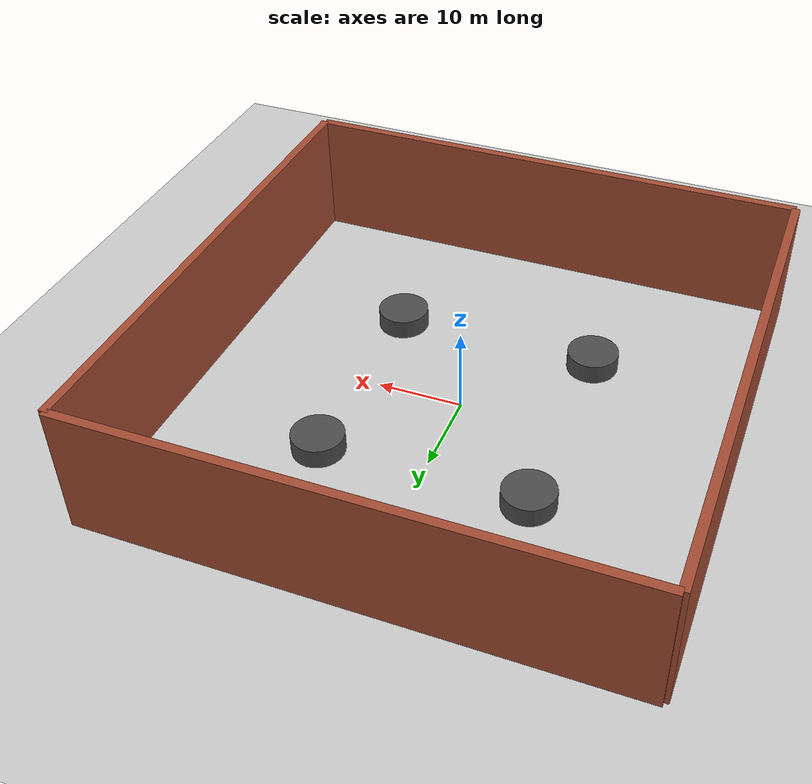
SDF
<sdf version='1.6'>
  <world name='default'>
    <light name='sun' type='directional'>
      <cast_shadows>1</cast_shadows>
      <pose frame=''>0 0 10 0 -0 0</pose>
      <diffuse>0.8 0.8 0.8 1</diffuse>
      <specular>0.2 0.2 0.2 1</specular>
      <attenuation>
        <range>1000</range>
        <constant>0.9</constant>
        <linear>0.01</linear>
        <quadratic>0.001</quadratic>
      </attenuation>
      <direction>-0.5 0.1 -0.9</direction>
    </light>
    <model name='ground_plane'>
      <static>1</static>
      <link name='link'>
        <collision name='collision'>
          <geometry>
            <plane>
              <normal>0 0 1</normal>
              <size>100 100</size>
            </plane>
          </geometry>
          <surface>
            <contact>
              <collide_bitmask>65535</collide_bitmask>
              <ode/>
            </contact>
            <friction>
              <ode>
                <mu>100</mu>
                <mu2>50</mu2>
              </ode>
              <torsional>
                <ode/>
              </torsional>
            </friction>
            <bounce/>
          </surface>
          <max_contacts>10</max_contacts>
        </collision>
        <visual name='visual'>
          <cast_shadows>0</cast_shadows>
          <geometry>
            <plane>
              <normal>0 0 1</normal>
              <size>100 100</size>
            </plane>
          </geometry>
          <material>
            <script>
              <uri>file://media/materials/scripts/gazebo.material</uri>
              <name>Gazebo/Grey</name>
            </script>
          </material>
        </visual>
        <self_collide>0</self_collide>
        <enable_wind>0</enable_wind>
        <kinematic>0</kinematic>
      </link>
    </model>
    <gravity>0 0 -9.8</gravity>
    <magnetic_field>6e-06 2.3e-05 -4.2e-05</magnetic_field>
    <atmosphere type='adiabatic'/>
    <physics name='default_physics' default='0' type='ode'>
      <max_step_size>0.001</max_step_size>
      <real_time_factor>1</real_time_factor>
      <real_time_update_rate>1000</real_time_update_rate>
    </physics>
    <scene>
      <ambient>0.4 0.4 0.4 1</ambient>
      <background>0.7 0.7 0.7 1</background>
      <shadows>1</shadows>
    </scene>
    <wind/>
    <spherical_coordinates>
      <surface_model>EARTH_WGS84</surface_model>
      <latitude_deg>0</latitude_deg>
      <longitude_deg>0</longitude_deg>
      <elevation>0</elevation>
      <heading_deg>0</heading_deg>
    </spherical_coordinates>
    <model name='my_arena'>
      <pose frame=''>0 0 0 0 -0 0</pose>
      <link name='Wall_12'>
        <collision name='Wall_12_Collision'>
          <geometry>
            <box>
              <size>61 1 15</size>
            </box>
          </geometry>
          <pose frame=''>0 0 7.5 0 -0 0</pose>
          <max_contacts>10</max_contacts>
          <surface>
            <contact>
              <ode/>
            </contact>
            <bounce/>
            <friction>
              <torsional>
                <ode/>
              </torsional>
              <ode/>
            </friction>
          </surface>
        </collision>
        <visual name='Wall_12_Visual'>
          <pose frame=''>0 0 7.5 0 -0 0</pose>
          <geometry>
            <box>
              <size>61 1 15</size>
            </box>
          </geometry>
          <material>
            <script>
              <uri>file://media/materials/scripts/gazebo.material</uri>
              <name>Gazebo/Bricks</name>
            </script>
            <ambient>1 1 1 1</ambient>
          </material>
          <meta>
            <layer>0</layer>
          </meta>
        </visual>
        <pose frame=''>0 -30.5 0 0 -0 0</pose>
        <self_collide>0</self_collide>
        <enable_wind>0</enable_wind>
        <kinematic>0</kinematic>
      </link>
      <link name='Wall_16'>
        <collision name='Wall_16_Collision'>
          <geometry>
            <box>
              <size>61 1 15</size>
            </box>
          </geometry>
          <pose frame=''>0 0 7.5 0 -0 0</pose>
          <max_contacts>10</max_contacts>
          <surface>
            <contact>
              <ode/>
            </contact>
            <bounce/>
            <friction>
              <torsional>
                <ode/>
              </torsional>
              <ode/>
            </friction>
          </surface>
        </collision>
        <visual name='Wall_16_Visual'>
          <pose frame=''>0 0 7.5 0 -0 0</pose>
          <geometry>
            <box>
              <size>61 1 15</size>
            </box>
          </geometry>
          <material>
            <script>
              <uri>file://media/materials/scripts/gazebo.material</uri>
              <name>Gazebo/Bricks</name>
            </script>
            <ambient>1 1 1 1</ambient>
          </material>
          <meta>
            <layer>0</layer>
          </meta>
        </visual>
        <pose frame=''>-30.5 0 0 0 -0 1.5708</pose>
        <self_collide>0</self_collide>
        <enable_wind>0</enable_wind>
        <kinematic>0</kinematic>
      </link>
      <link name='Wall_18'>
        <collision name='Wall_18_Collision'>
          <geometry>
            <box>
              <size>61 1 15</size>
            </box>
          </geometry>
          <pose frame=''>0 0 7.5 0 -0 0</pose>
          <max_contacts>10</max_contacts>
          <surface>
            <contact>
              <ode/>
            </contact>
            <bounce/>
            <friction>
              <torsional>
                <ode/>
              </torsional>
              <ode/>
            </friction>
          </surface>
        </collision>
        <visual name='Wall_18_Visual'>
          <pose frame=''>0 0 7.5 0 -0 0</pose>
          <geometry>
            <box>
              <size>61 1 15</size>
            </box>
          </geometry>
          <material>
            <script>
              <uri>file://media/materials/scripts/gazebo.material</uri>
              <name>Gazebo/Bricks</name>
            </script>
            <ambient>1 1 1 1</ambient>
          </material>
          <meta>
            <layer>0</layer>
          </meta>
        </visual>
        <pose frame=''>30.5 0 0 0 -0 1.5708</pose>
        <self_collide>0</self_collide>
        <enable_wind>0</enable_wind>
        <kinematic>0</kinematic>
      </link>
      <link name='Wall_20'>
        <collision name='Wall_20_Collision'>
          <geometry>
            <box>
              <size>61 1 15</size>
            </box>
          </geometry>
          <pose frame=''>0 0 7.5 0 -0 0</pose>
          <max_contacts>10</max_contacts>
          <surface>
            <contact>
              <ode/>
            </contact>
            <bounce/>
            <friction>
              <torsional>
                <ode/>
              </torsional>
              <ode/>
            </friction>
          </surface>
        </collision>
        <visual name='Wall_20_Visual'>
          <pose frame=''>0 0 7.5 0 -0 0</pose>
          <geometry>
            <box>
              <size>61 1 15</size>
            </box>
          </geometry>
          <material>
            <script>
              <uri>file://media/materials/scripts/gazebo.material</uri>
              <name>Gazebo/Bricks</name>
            </script>
            <ambient>1 1 1 1</ambient>
          </material>
          <meta>
            <layer>0</layer>
          </meta>
        </visual>
        <pose frame=''>0 30.5 0 0 -0 3.14159</pose>
        <self_collide>0</self_collide>
        <enable_wind>0</enable_wind>
        <kinematic>0</kinematic>
      </link>
      <static>1</static>
    </model>
    <gui fullscreen='0'>
      <camera name='user_camera'>
        <pose frame=''>-12.728 -6.56375 85.5906 -0 1.3858 1.10123</pose>
        <view_controller>orbit</view_controller>
        <projection_type>perspective</projection_type>
      </camera>
    </gui>
    <model name='obstaculo_1'>
      <static>1</static>
      <pose frame=''>-12 -12 1.0 0 -0 0</pose>
      <link name='link'>
        <collision name='collision'>
          <geometry><cylinder><radius>3.0</radius><length>2.5</length></cylinder></geometry>
          <surface>
            <contact><collide_bitmask>65535</collide_bitmask><ode/></contact>
            <friction><ode><mu>100</mu><mu2>50</mu2></ode><torsional><ode/></torsional></friction>
            <bounce/>
          </surface>
          <max_contacts>10</max_contacts>
        </collision>
        <visual name='visual'>
          <geometry><cylinder><radius>3.0</radius><length>2.5</length></cylinder></geometry>
          <material>
            <script>
              <uri>file://media/materials/scripts/gazebo.material</uri>
              <name>Gazebo/DarkGrey</name>
            </script>
          </material>
        </visual>
        <self_collide>0</self_collide>
        <enable_wind>0</enable_wind>
        <kinematic>0</kinematic>
      </link>
    </model>
    <model name='obstaculo_2'>
      <static>1</static>
      <pose frame=''>-12 12 1.0 0 -0 0</pose>
      <link name='link'>
        <collision name='collision'>
          <geometry><cylinder><radius>3.0</radius><length>2.5</length></cylinder></geometry>
          <surface>
            <contact><collide_bitmask>65535</collide_bitmask><ode/></contact>
            <friction><ode><mu>100</mu><mu2>50</mu2></ode><torsional><ode/></torsional></friction>
            <bounce/>
          </surface>
          <max_contacts>10</max_contacts>
        </collision>
        <visual name='visual'>
          <geometry><cylinder><radius>3.0</radius><length>2.5</length></cylinder></geometry>
          <material>
            <script>
              <uri>file://media/materials/scripts/gazebo.material</uri>
              <name>Gazebo/DarkGrey</name>
            </script>
          </material>
        </visual>
        <self_collide>0</self_collide>
        <enable_wind>0</enable_wind>
        <kinematic>0</kinematic>
      </link>
    </model>
    <model name='obstaculo_3'>
      <static>1</static>
      <pose frame=''>12 -12 1.0 0 -0 0</pose>
      <link name='link'>
        <collision name='collision'>
          <geometry><cylinder><radius>3.0</radius><length>2.5</length></cylinder></geometry>
          <surface>
            <contact><collide_bitmask>65535</collide_bitmask><ode/></contact>
            <friction><ode><mu>100</mu><mu2>50</mu2></ode><torsional><ode/></torsional></friction>
            <bounce/>
          </surface>
          <max_contacts>10</max_contacts>
        </collision>
        <visual name='visual'>
          <geometry><cylinder><radius>3.0</radius><length>2.5</length></cylinder></geometry>
          <material>
            <script>
              <uri>file://media/materials/scripts/gazebo.material</uri>
              <name>Gazebo/DarkGrey</name>
            </script>
          </material>
        </visual>
        <self_collide>0</self_collide>
        <enable_wind>0</enable_wind>
        <kinematic>0</kinematic>
      </link>
    </model>
    <model name='obstaculo_4'>
      <static>1</static>
      <pose frame=''>12 12 1.0 0 -0 0</pose>
      <link name='link'>
        <collision name='collision'>
          <geometry><cylinder><radius>3.0</radius><length>2.5</length></cylinder></geometry>
          <surface>
            <contact><collide_bitmask>65535</collide_bitmask><ode/></contact>
            <friction><ode><mu>100</mu><mu2>50</mu2></ode><torsional><ode/></torsional></friction>
            <bounce/>
          </surface>
          <max_contacts>10</max_contacts>
        </collision>
        <visual name='visual'>
          <geometry><cylinder><radius>3.0</radius><length>2.5</length></cylinder></geometry>
          <material>
            <script>
              <uri>file://media/materials/scripts/gazebo.material</uri>
              <name>Gazebo/DarkGrey</name>
            </script>
          </material>
        </visual>
        <self_collide>0</self_collide>
        <enable_wind>0</enable_wind>
        <kinematic>0</kinematic>
      </link>
    </model>
  </world>
</sdf>
